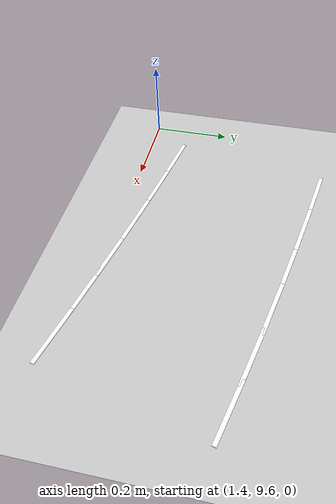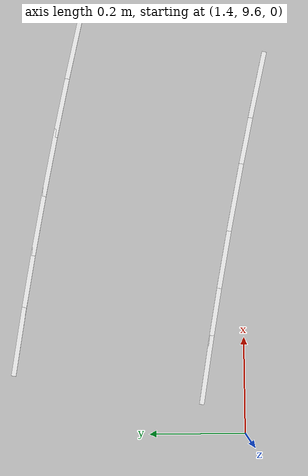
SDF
<sdf version="1.7">
 <world name="default">
  <model name="ground_plane">
   <static>1</static>
   <link name="link">
    <collision name="collision">
     <geometry><plane><normal>0 0 1</normal><size>100 100</size></plane></geometry>
     <surface>
      <contact><collide_bitmask>65535</collide_bitmask></contact>
      <friction><ode><mu>100</mu><mu2>50</mu2></ode></friction>
     </surface>
    </collision>
    <visual name="visual">
     <cast_shadows>0</cast_shadows>
     <geometry><plane><normal>0 0 1</normal><size>100 100</size></plane></geometry>
     <material>
      <script><uri>file://media/materials/scripts/gazebo.material</uri><name>Gazebo/Grey</name></script>
     </material>
    </visual>
   </link>
  </model>
  <model name="lane_line_left_107">
   <static>1</static>
   <link name="link">
    <pose>0 0 -0.004 0 -0 0</pose>
    <visual name="visual">
     <geometry><box><size>0.1457 0.01 0.01</size></box></geometry>
     <material><ambient>1 1 1 1</ambient><diffuse>1 1 1 1</diffuse></material>
    </visual>
    <collision name="collision"><geometry><box><size>0.1457 0.01 0.01</size></box></geometry></collision>
   </link>
   <pose>2.13776 9.56379 0 0 -0 2.92168</pose>
  </model>
  <model name="lane_line_right_107">
   <static>1</static>
   <link name="link">
    <pose>0 0 -0.004 0 -0 0</pose>
    <visual name="visual">
     <geometry><box><size>0.1457 0.01 0.01</size></box></geometry>
     <material><ambient>1 1 1 1</ambient><diffuse>1 1 1 1</diffuse></material>
    </visual>
    <collision name="collision"><geometry><box><size>0.1457 0.01 0.01</size></box></geometry></collision>
   </link>
   <pose>2.22502 9.95416 0 0 -0 2.92168</pose>
  </model>
  <model name="lane_line_left_108">
   <static>1</static>
   <link name="link">
    <pose>0 0 -0.004 0 -0 0</pose>
    <visual name="visual">
     <geometry><box><size>0.1457 0.01 0.01</size></box></geometry>
     <material><ambient>1 1 1 1</ambient><diffuse>1 1 1 1</diffuse></material>
    </visual>
    <collision name="collision"><geometry><box><size>0.1457 0.01 0.01</size></box></geometry></collision>
   </link>
   <pose>2.01741 9.5899 0 0 -0 2.93425</pose>
  </model>
  <model name="lane_line_right_108">
   <static>1</static>
   <link name="link">
    <pose>0 0 -0.004 0 -0 0</pose>
    <visual name="visual">
     <geometry><box><size>0.1457 0.01 0.01</size></box></geometry>
     <material><ambient>1 1 1 1</ambient><diffuse>1 1 1 1</diffuse></material>
    </visual>
    <collision name="collision"><geometry><box><size>0.1457 0.01 0.01</size></box></geometry></collision>
   </link>
   <pose>2.09976 9.98133 0 0 -0 2.93425</pose>
  </model>
  <model name="lane_line_left_109">
   <static>1</static>
   <link name="link">
    <pose>0 0 -0.004 0 -0 0</pose>
    <visual name="visual">
     <geometry><box><size>0.1457 0.01 0.01</size></box></geometry>
     <material><ambient>1 1 1 1</ambient><diffuse>1 1 1 1</diffuse></material>
    </visual>
    <collision name="collision"><geometry><box><size>0.1457 0.01 0.01</size></box></geometry></collision>
   </link>
   <pose>1.89675 9.61449 0 0 -0 2.94681</pose>
  </model>
  <model name="lane_line_right_109">
   <static>1</static>
   <link name="link">
    <pose>0 0 -0.004 0 -0 0</pose>
    <visual name="visual">
     <geometry><box><size>0.1457 0.01 0.01</size></box></geometry>
     <material><ambient>1 1 1 1</ambient><diffuse>1 1 1 1</diffuse></material>
    </visual>
    <collision name="collision"><geometry><box><size>0.1457 0.01 0.01</size></box></geometry></collision>
   </link>
   <pose>1.97417 10.0069 0 0 -0 2.94681</pose>
  </model>
  <model name="lane_line_left_110">
   <static>1</static>
   <link name="link">
    <pose>0 0 -0.004 0 -0 0</pose>
    <visual name="visual">
     <geometry><box><size>0.1457 0.01 0.01</size></box></geometry>
     <material><ambient>1 1 1 1</ambient><diffuse>1 1 1 1</diffuse></material>
    </visual>
    <collision name="collision"><geometry><box><size>0.1457 0.01 0.01</size></box></geometry></collision>
   </link>
   <pose>1.77578 9.63757 0 0 -0 2.95938</pose>
  </model>
  <model name="lane_line_right_110">
   <static>1</static>
   <link name="link">
    <pose>0 0 -0.004 0 -0 0</pose>
    <visual name="visual">
     <geometry><box><size>0.1457 0.01 0.01</size></box></geometry>
     <material><ambient>1 1 1 1</ambient><diffuse>1 1 1 1</diffuse></material>
    </visual>
    <collision name="collision"><geometry><box><size>0.1457 0.01 0.01</size></box></geometry></collision>
   </link>
   <pose>1.84826 10.0309 0 0 -0 2.95938</pose>
  </model>
  <model name="lane_line_left_111">
   <static>1</static>
   <link name="link">
    <pose>0 0 -0.004 0 -0 0</pose>
    <visual name="visual">
     <geometry><box><size>0.1457 0.01 0.01</size></box></geometry>
     <material><ambient>1 1 1 1</ambient><diffuse>1 1 1 1</diffuse></material>
    </visual>
    <collision name="collision"><geometry><box><size>0.1457 0.01 0.01</size></box></geometry></collision>
   </link>
   <pose>1.65453 9.65912 0 0 -0 2.97195</pose>
  </model>
  <model name="lane_line_right_111">
   <static>1</static>
   <link name="link">
    <pose>0 0 -0.004 0 -0 0</pose>
    <visual name="visual">
     <geometry><box><size>0.1457 0.01 0.01</size></box></geometry>
     <material><ambient>1 1 1 1</ambient><diffuse>1 1 1 1</diffuse></material>
    </visual>
    <collision name="collision"><geometry><box><size>0.1457 0.01 0.01</size></box></geometry></collision>
   </link>
   <pose>1.72207 10.0534 0 0 -0 2.97195</pose>
  </model>
  <model name="lane_line_left_112">
   <static>1</static>
   <link name="link">
    <pose>0 0 -0.004 0 -0 0</pose>
    <visual name="visual">
     <geometry><box><size>0.1457 0.01 0.01</size></box></geometry>
     <material><ambient>1 1 1 1</ambient><diffuse>1 1 1 1</diffuse></material>
    </visual>
    <collision name="collision"><geometry><box><size>0.1457 0.01 0.01</size></box></geometry></collision>
   </link>
   <pose>1.53303 9.67915 0 0 -0 2.98451</pose>
  </model>
  <model name="lane_line_right_112">
   <static>1</static>
   <link name="link">
    <pose>0 0 -0.004 0 -0 0</pose>
    <visual name="visual">
     <geometry><box><size>0.1457 0.01 0.01</size></box></geometry>
     <material><ambient>1 1 1 1</ambient><diffuse>1 1 1 1</diffuse></material>
    </visual>
    <collision name="collision"><geometry><box><size>0.1457 0.01 0.01</size></box></geometry></collision>
   </link>
   <pose>1.5956 10.0742 0 0 -0 2.98451</pose>
  </model>
 </world>
</sdf>
